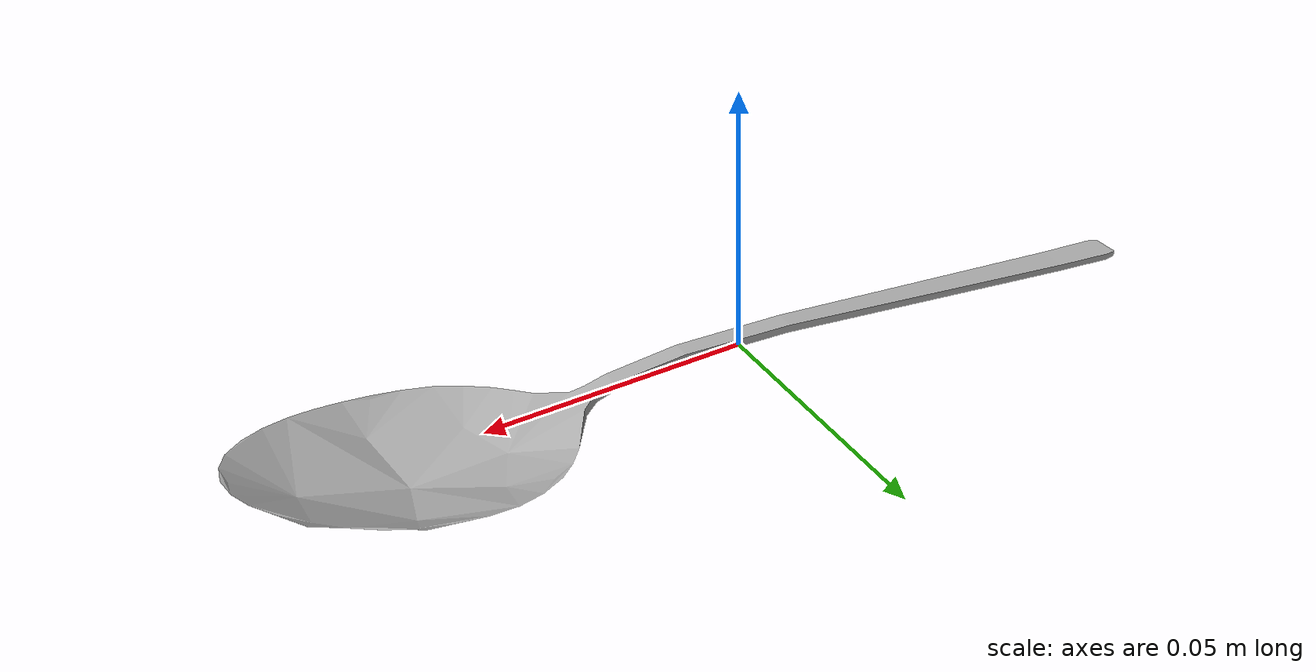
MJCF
<?xml version="1.0" ?>
<mujoco model="teaspoon">
	<compiler meshdir="teaspoon/meshes" texturedir="teaspoon/textures" angle="radian" autolimits="true" balanceinertia="true" boundmass="0.000001" boundinertia="0.000001"/>
	<default>
		<default class="visual">
			<geom contype="0" conaffinity="0"/>
		</default>
		<default class="collision">
			<geom rgba="1.0 0.0 0.0 0.0"/>
		</default>
	</default>
	<asset>
		<mesh name="Teaspoon" file="stl/Teaspoon.stl" scale="1.0 1.0 1.0"/>
		<mesh name="Teaspoon_001" file="stl/Teaspoon_001.stl" scale="1.0 1.0 1.0"/>
		<mesh name="Teaspoon_002" file="stl/Teaspoon_002.stl" scale="1.0 1.0 1.0"/>
		<mesh name="Teaspoon_003" file="stl/Teaspoon_003.stl" scale="1.0 1.0 1.0"/>
		<mesh name="Teaspoon_004" file="stl/Teaspoon_004.stl" scale="1.0 1.0 1.0"/>
		<mesh name="Teaspoon_005" file="stl/Teaspoon_005.stl" scale="1.0 1.0 1.0"/>
		<mesh name="Teaspoon_006" file="stl/Teaspoon_006.stl" scale="1.0 1.0 1.0"/>
		<material name="M_Teaspoon" rgba="0.664900004863739 0.664900004863739 0.664900004863739 1.0" emission="0.0"/>
	</asset>
	<worldbody>
		<body name="teaspoon" pos="0.0 0.0 0.0" quat="1.0 0.0 0.0 0.0">
			<inertial mass="0.03092772699892521" pos="0.04338710755109787 -0.00010086490510730073 -0.002390378387644887" quat="0.9999679327011108 -0.002129353117197752 0.007644678931683302 -0.0010943206725642085" diaginertia="2.2855149381939555e-06 0.0001231631904374808 0.0001244646991835907"/>
			<geom name="Teaspoon" type="mesh" pos="0.0 0.0 0.0" quat="1.0 0.0 0.0 0.0" mesh="Teaspoon" material="M_Teaspoon" class="visual"/>
			<geom name="Teaspoon_001" type="mesh" pos="0.0 0.0 0.0" quat="1.0 0.0 0.0 0.0" mesh="Teaspoon_001" class="collision"/>
			<geom name="Teaspoon_002" type="mesh" pos="0.0 0.0 0.0" quat="1.0 0.0 0.0 0.0" mesh="Teaspoon_002" class="collision"/>
			<geom name="Teaspoon_003" type="mesh" pos="0.0 0.0 0.0" quat="1.0 0.0 0.0 0.0" mesh="Teaspoon_003" class="collision"/>
			<geom name="Teaspoon_004" type="mesh" pos="0.0 0.0 0.0" quat="1.0 0.0 0.0 0.0" mesh="Teaspoon_004" class="collision"/>
			<geom name="Teaspoon_005" type="mesh" pos="0.0 0.0 0.0" quat="1.0 0.0 0.0 0.0" mesh="Teaspoon_005" class="collision"/>
			<geom name="Teaspoon_006" type="mesh" pos="0.0 0.0 0.0" quat="1.0 0.0 0.0 0.0" mesh="Teaspoon_006" class="collision"/>
		</body>
	</worldbody>
	<equality/>
</mujoco>
